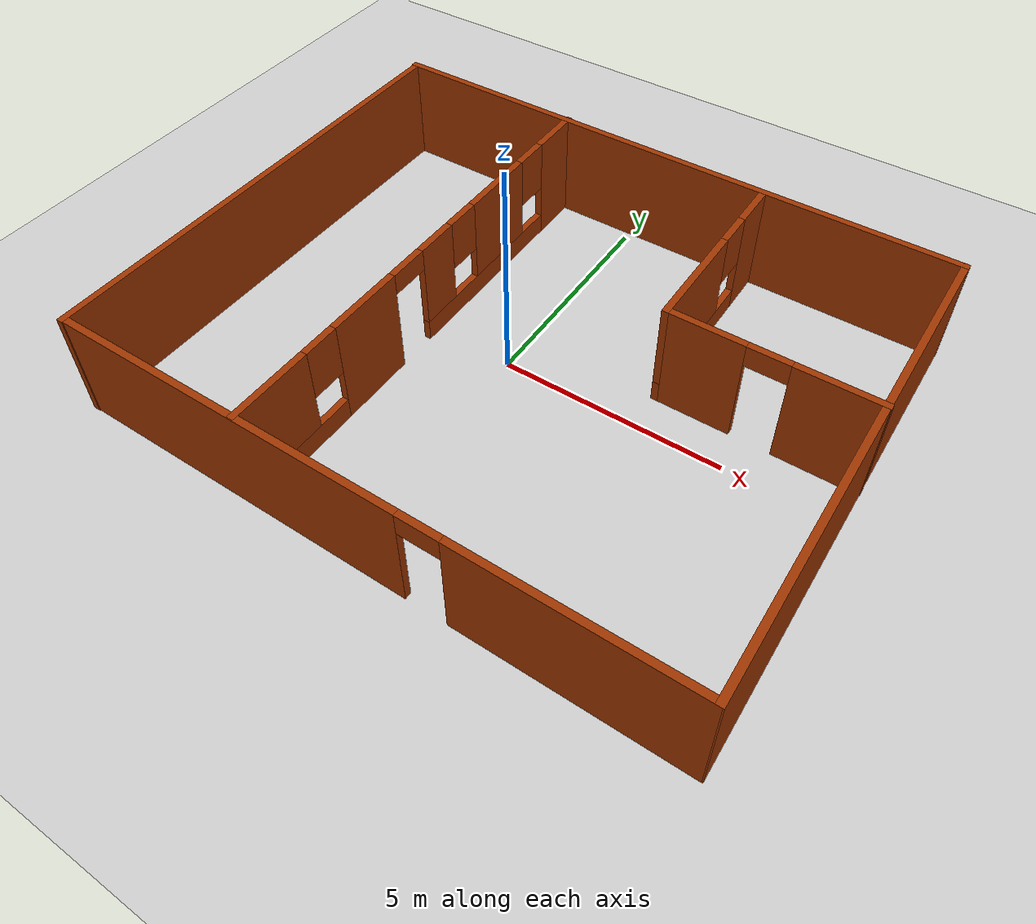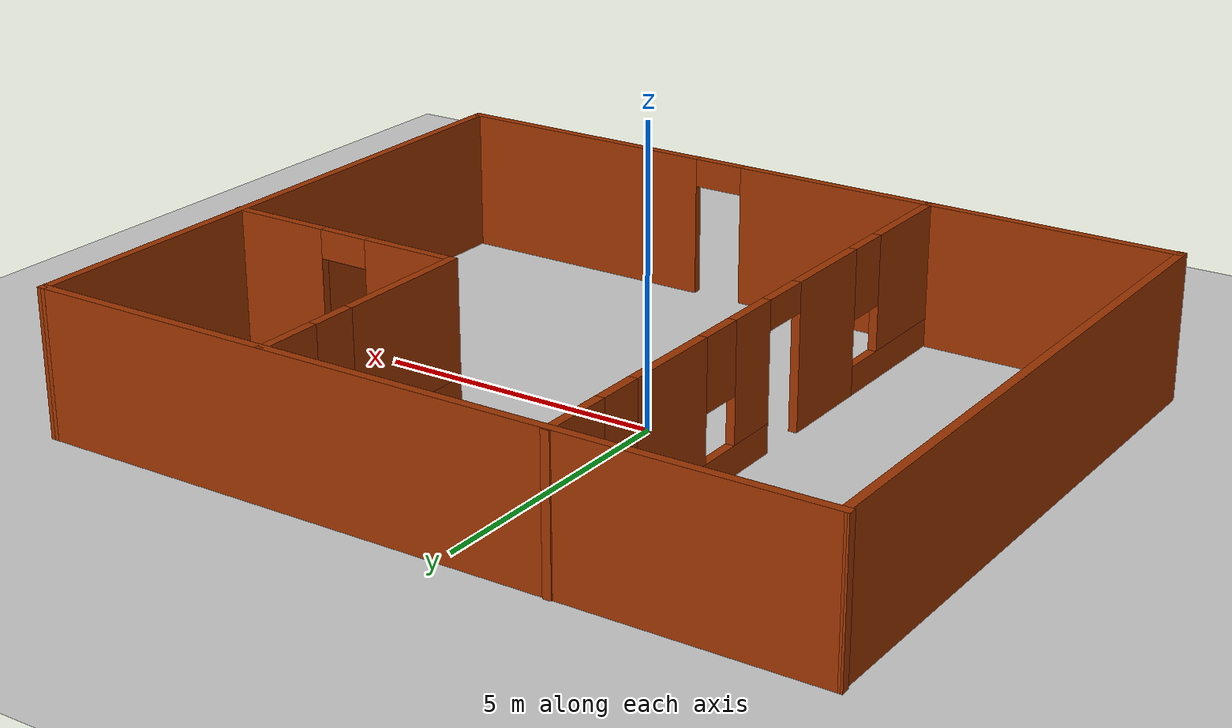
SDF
<sdf version="1.6">
 <world name="default">
  <light name="sun" type="directional">
   <pose>0 0 10 0 -0 0</pose>
   <diffuse>0.8 0.8 0.8 1</diffuse>
   <specular>0.1 0.1 0.1 1</specular>
   <attenuation>
    <range>1000</range>
    <constant>0.9</constant>
    <linear>0.01</linear>
    <quadratic>0.001</quadratic>
   </attenuation>
   <direction>-0.5 0.5 -1</direction>
  </light>
  <model name="ground_plane">
   <static>1</static>
   <link name="link">
    <collision name="collision">
     <geometry><plane><normal>0 0 1</normal><size>100 100</size></plane></geometry>
     <surface><friction><ode><mu>100</mu><mu2>50</mu2></ode></friction></surface>
    </collision>
    <visual name="visual">
     <cast_shadows>0</cast_shadows>
     <geometry><plane><normal>0 0 1</normal><size>100 100</size></plane></geometry>
     <material>
      <script><uri>file://media/materials/scripts/gazebo.material</uri><name>Gazebo/Grey</name></script>
     </material>
    </visual>
   </link>
  </model>
  <gravity>0 0 -9.8</gravity>
  <magnetic_field>6e-06 2.3e-05 -4.2e-05</magnetic_field>
  <atmosphere type="adiabatic"/>
  <physics name="default_physics" default="0" type="ode">
   <max_step_size>0.001</max_step_size>
   <real_time_factor>1</real_time_factor>
   <real_time_update_rate>1000</real_time_update_rate>
  </physics>
  <scene><ambient>0.4 0.4 0.4 1</ambient><background>0.7 0.7 0.7 1</background><shadows>1</shadows></scene>
  <spherical_coordinates>
   <surface_model>EARTH_WGS84</surface_model>
   <latitude_deg>0</latitude_deg>
   <longitude_deg>0</longitude_deg>
   <elevation>0</elevation>
   <heading_deg>0</heading_deg>
  </spherical_coordinates>
  <model name="ingrid_0">
   <pose>0.547957 -0.145633 0 0 -0 0</pose>
   <link name="Wall_0">
    <collision name="Wall_0_Collision">
     <geometry><box><size>11 0.15 2.5</size></box></geometry>
     <pose>0 0 1.25 0 -0 0</pose>
    </collision>
    <visual name="Wall_0_Visual">
     <pose>0 0 1.25 0 -0 0</pose>
     <geometry><box><size>11 0.15 2.5</size></box></geometry>
     <material>
      <script><uri>file://media/materials/scripts/gazebo.material</uri><name>Gazebo/Grey</name></script>
      <ambient>0.615686 0.203922 0 1</ambient>
     </material>
    </visual>
    <pose>-6.82034 -0.016189 0 0 -0 1.5708</pose>
   </link>
   <link name="Wall_1">
    <collision name="Wall_1_Collision">
     <geometry><box><size>13.8484 0.15 2.5</size></box></geometry>
     <pose>0 0 1.25 0 -0 0</pose>
    </collision>
    <visual name="Wall_1_Visual">
     <pose>0 0 1.25 0 -0 0</pose>
     <geometry><box><size>13.8484 0.15 2.5</size></box></geometry>
     <material>
      <script><uri>file://media/materials/scripts/gazebo.material</uri><name>Gazebo/Grey</name></script>
      <ambient>0.615686 0.203922 0 1</ambient>
     </material>
    </visual>
    <pose>-0.006322 5.41718 0 0 -0 0.001222</pose>
   </link>
   <link name="Wall_2">
    <collision name="Wall_2_Collision">
     <geometry><box><size>11 0.15 2.5</size></box></geometry>
     <pose>0 0 1.25 0 -0 0</pose>
    </collision>
    <visual name="Wall_2_Visual">
     <pose>0 0 1.25 0 -0 0</pose>
     <geometry><box><size>11 0.15 2.5</size></box></geometry>
     <material>
      <script><uri>file://media/materials/scripts/gazebo.material</uri><name>Gazebo/Grey</name></script>
      <ambient>0.615686 0.203922 0 1</ambient>
     </material>
    </visual>
    <pose>6.84287 0.00055 0 0 0 -1.5708</pose>
   </link>
   <link name="Wall_3">
    <pose>0.016272 -5.42445 0 0 -0 3.14159</pose>
    <visual name="Wall_3_Visual_0">
     <pose>-4.44831 0 1.25 0 -0 0</pose>
     <geometry><box><size>4.85337 0.15 2.5</size></box></geometry>
     <material>
      <script><uri>file://media/materials/scripts/gazebo.material</uri><name>Gazebo/Grey</name></script>
      <ambient>0.615686 0.203922 0 1</ambient>
     </material>
    </visual>
    <collision name="Wall_3_Collision_0">
     <geometry><box><size>4.85337 0.15 2.5</size></box></geometry>
     <pose>-4.44831 0 1.25 0 -0 0</pose>
    </collision>
    <visual name="Wall_3_Visual_1">
     <pose>2.87669 0 1.25 0 -0 0</pose>
     <geometry><box><size>7.99663 0.15 2.5</size></box></geometry>
     <material>
      <script><uri>file://media/materials/scripts/gazebo.material</uri><name>Gazebo/Grey</name></script>
      <ambient>0.615686 0.203922 0 1</ambient>
     </material>
    </visual>
    <collision name="Wall_3_Collision_1">
     <geometry><box><size>7.99663 0.15 2.5</size></box></geometry>
     <pose>2.87669 0 1.25 0 -0 0</pose>
    </collision>
    <visual name="Wall_3_Visual_2">
     <pose>-1.57163 0 2.25 0 -0 0</pose>
     <geometry><box><size>0.9 0.15 0.5</size></box></geometry>
     <material>
      <script><uri>file://media/materials/scripts/gazebo.material</uri><name>Gazebo/Grey</name></script>
      <ambient>0.615686 0.203922 0 1</ambient>
     </material>
    </visual>
    <collision name="Wall_3_Collision_2">
     <geometry><box><size>0.9 0.15 0.5</size></box></geometry>
     <pose>-1.57163 0 2.25 0 -0 0</pose>
    </collision>
   </link>
   <link name="Wall_5">
    <pose>-2.45001 0.016189 0 0 0 -1.5708</pose>
    <visual name="Wall_5_Visual_0">
     <pose>-4.85711 0 1.25 0 -0 0</pose>
     <geometry><box><size>1.28578 0.15 2.5</size></box></geometry>
     <material>
      <script><uri>file://media/materials/scripts/gazebo.material</uri><name>Gazebo/Grey</name></script>
      <ambient>0.615686 0.203922 0 1</ambient>
     </material>
    </visual>
    <collision name="Wall_5_Collision_0">
     <geometry><box><size>1.28578 0.15 2.5</size></box></geometry>
     <pose>-4.85711 0 1.25 0 -0 0</pose>
    </collision>
    <visual name="Wall_5_Visual_1">
     <pose>1.94492 0 1.25 0 -0 0</pose>
     <geometry><box><size>1.75323 0.15 2.5</size></box></geometry>
     <material>
      <script><uri>file://media/materials/scripts/gazebo.material</uri><name>Gazebo/Grey</name></script>
      <ambient>0.615686 0.203922 0 1</ambient>
     </material>
    </visual>
    <collision name="Wall_5_Collision_1">
     <geometry><box><size>1.75323 0.15 2.5</size></box></geometry>
     <pose>1.94492 0 1.25 0 -0 0</pose>
    </collision>
    <visual name="Wall_5_Visual_2">
     <pose>-2.02296 0 0.25 0 -0 0</pose>
     <geometry><box><size>4.38252 0.15 0.5</size></box></geometry>
     <material>
      <script><uri>file://media/materials/scripts/gazebo.material</uri><name>Gazebo/Grey</name></script>
      <ambient>0.615686 0.203922 0 1</ambient>
     </material>
    </visual>
    <collision name="Wall_5_Collision_2">
     <geometry><box><size>4.38252 0.15 0.5</size></box></geometry>
     <pose>-2.02296 0 0.25 0 -0 0</pose>
    </collision>
    <visual name="Wall_5_Visual_3">
     <pose>4.16076 0 0.25 0 -0 0</pose>
     <geometry><box><size>2.67847 0.15 0.5</size></box></geometry>
     <material>
      <script><uri>file://media/materials/scripts/gazebo.material</uri><name>Gazebo/Grey</name></script>
      <ambient>0.615686 0.203922 0 1</ambient>
     </material>
    </visual>
    <collision name="Wall_5_Collision_3">
     <geometry><box><size>2.67847 0.15 0.5</size></box></geometry>
     <pose>4.16076 0 0.25 0 -0 0</pose>
    </collision>
    <visual name="Wall_5_Visual_4">
     <pose>-2.51261 0 1.5 0 -0 0</pose>
     <geometry><box><size>1.80323 0.15 2</size></box></geometry>
     <material>
      <script><uri>file://media/materials/scripts/gazebo.material</uri><name>Gazebo/Grey</name></script>
      <ambient>0.615686 0.203922 0 1</ambient>
     </material>
    </visual>
    <collision name="Wall_5_Collision_4">
     <geometry><box><size>1.80323 0.15 2</size></box></geometry>
     <pose>-2.51261 0 1.5 0 -0 0</pose>
    </collision>
    <visual name="Wall_5_Visual_5">
     <pose>-0.321346 0 1.5 0 -0 0</pose>
     <geometry><box><size>0.979296 0.15 2</size></box></geometry>
     <material>
      <script><uri>file://media/materials/scripts/gazebo.material</uri><name>Gazebo/Grey</name></script>
      <ambient>0.615686 0.203922 0 1</ambient>
     </material>
    </visual>
    <collision name="Wall_5_Collision_5">
     <geometry><box><size>0.979296 0.15 2</size></box></geometry>
     <pose>-0.321346 0 1.5 0 -0 0</pose>
    </collision>
    <visual name="Wall_5_Visual_6">
     <pose>-0.321346 0 1.5 0 -0 0</pose>
     <geometry><box><size>0.979296 0.15 2</size></box></geometry>
     <material>
      <script><uri>file://media/materials/scripts/gazebo.material</uri><name>Gazebo/Grey</name></script>
      <ambient>0.615686 0.203922 0 1</ambient>
     </material>
    </visual>
    <collision name="Wall_5_Collision_6">
     <geometry><box><size>0.979296 0.15 2</size></box></geometry>
     <pose>-0.321346 0 1.5 0 -0 0</pose>
    </collision>
    <visual name="Wall_5_Visual_7">
     <pose>4.56076 0 1.5 0 -0 0</pose>
     <geometry><box><size>1.87847 0.15 2</size></box></geometry>
     <material>
      <script><uri>file://media/materials/scripts/gazebo.material</uri><name>Gazebo/Grey</name></script>
      <ambient>0.615686 0.203922 0 1</ambient>
     </material>
    </visual>
    <collision name="Wall_5_Collision_7">
     <geometry><box><size>1.87847 0.15 2</size></box></geometry>
     <pose>4.56076 0 1.5 0 -0 0</pose>
    </collision>
    <visual name="Wall_5_Visual_8">
     <pose>-3.81422 0 1.9 0 -0 0</pose>
     <geometry><box><size>0.8 0.15 1.2</size></box></geometry>
     <material>
      <script><uri>file://media/materials/scripts/gazebo.material</uri><name>Gazebo/Grey</name></script>
      <ambient>0.615686 0.203922 0 1</ambient>
     </material>
    </visual>
    <collision name="Wall_5_Collision_8">
     <geometry><box><size>0.8 0.15 1.2</size></box></geometry>
     <pose>-3.81422 0 1.9 0 -0 0</pose>
    </collision>
    <visual name="Wall_5_Visual_9">
     <pose>3.22153 0 1.9 0 -0 0</pose>
     <geometry><box><size>0.8 0.15 1.2</size></box></geometry>
     <material>
      <script><uri>file://media/materials/scripts/gazebo.material</uri><name>Gazebo/Grey</name></script>
      <ambient>0.615686 0.203922 0 1</ambient>
     </material>
    </visual>
    <collision name="Wall_5_Collision_9">
     <geometry><box><size>0.8 0.15 1.2</size></box></geometry>
     <pose>3.22153 0 1.9 0 -0 0</pose>
    </collision>
    <visual name="Wall_5_Visual_10">
     <pose>-1.21099 0 1.9 0 -0 0</pose>
     <geometry><box><size>0.8 0.15 1.2</size></box></geometry>
     <material>
      <script><uri>file://media/materials/scripts/gazebo.material</uri><name>Gazebo/Grey</name></script>
      <ambient>0.615686 0.203922 0 1</ambient>
     </material>
    </visual>
    <collision name="Wall_5_Collision_10">
     <geometry><box><size>0.8 0.15 1.2</size></box></geometry>
     <pose>-1.21099 0 1.9 0 -0 0</pose>
    </collision>
    <visual name="Wall_5_Visual_11">
     <pose>0.618302 0 2.25 0 -0 0</pose>
     <geometry><box><size>0.9 0.15 0.5</size></box></geometry>
     <material>
      <script><uri>file://media/materials/scripts/gazebo.material</uri><name>Gazebo/Grey</name></script>
      <ambient>0.615686 0.203922 0 1</ambient>
     </material>
    </visual>
    <collision name="Wall_5_Collision_11">
     <geometry><box><size>0.9 0.15 0.5</size></box></geometry>
     <pose>0.618302 0 2.25 0 -0 0</pose>
    </collision>
    <visual name="Wall_5_Visual_12">
     <pose>0.618302 0 2.25 0 -0 0</pose>
     <geometry><box><size>0.9 0.15 0.5</size></box></geometry>
     <material>
      <script><uri>file://media/materials/scripts/gazebo.material</uri><name>Gazebo/Grey</name></script>
      <ambient>0.615686 0.203922 0 1</ambient>
     </material>
    </visual>
    <collision name="Wall_5_Collision_12">
     <geometry><box><size>0.9 0.15 0.5</size></box></geometry>
     <pose>0.618302 0 2.25 0 -0 0</pose>
    </collision>
   </link>
   <link name="Wall_7">
    <pose>2.50561 3.2356 0 0 0 -1.5708</pose>
    <visual name="Wall_7_Visual_0">
     <pose>-1.67517 0 1.25 0 -0 0</pose>
     <geometry><box><size>1.14965 0.15 2.5</size></box></geometry>
     <material>
      <script><uri>file://media/materials/scripts/gazebo.material</uri><name>Gazebo/Grey</name></script>
      <ambient>0.615686 0.203922 0 1</ambient>
     </material>
    </visual>
    <collision name="Wall_7_Collision_0">
     <geometry><box><size>1.14965 0.15 2.5</size></box></geometry>
     <pose>-1.67517 0 1.25 0 -0 0</pose>
    </collision>
    <visual name="Wall_7_Visual_1">
     <pose>0.574826 0 0.25 0 -0 0</pose>
     <geometry><box><size>3.35035 0.15 0.5</size></box></geometry>
     <material>
      <script><uri>file://media/materials/scripts/gazebo.material</uri><name>Gazebo/Grey</name></script>
      <ambient>0.615686 0.203922 0 1</ambient>
     </material>
    </visual>
    <collision name="Wall_7_Collision_1">
     <geometry><box><size>3.35035 0.15 0.5</size></box></geometry>
     <pose>0.574826 0 0.25 0 -0 0</pose>
    </collision>
    <visual name="Wall_7_Visual_2">
     <pose>0.974826 0 1.5 0 -0 0</pose>
     <geometry><box><size>2.55035 0.15 2</size></box></geometry>
     <material>
      <script><uri>file://media/materials/scripts/gazebo.material</uri><name>Gazebo/Grey</name></script>
      <ambient>0.615686 0.203922 0 1</ambient>
     </material>
    </visual>
    <collision name="Wall_7_Collision_2">
     <geometry><box><size>2.55035 0.15 2</size></box></geometry>
     <pose>0.974826 0 1.5 0 -0 0</pose>
    </collision>
    <visual name="Wall_7_Visual_3">
     <pose>-0.700348 0 1.9 0 -0 0</pose>
     <geometry><box><size>0.8 0.15 1.2</size></box></geometry>
     <material>
      <script><uri>file://media/materials/scripts/gazebo.material</uri><name>Gazebo/Grey</name></script>
      <ambient>0.615686 0.203922 0 1</ambient>
     </material>
    </visual>
    <collision name="Wall_7_Collision_3">
     <geometry><box><size>0.8 0.15 1.2</size></box></geometry>
     <pose>-0.700348 0 1.9 0 -0 0</pose>
    </collision>
   </link>
   <link name="Wall_8">
    <pose>4.68061 1.0606 0 0 -0 0</pose>
    <visual name="Wall_8_Visual_0">
     <pose>-1.37354 0 1.25 0 -0 0</pose>
     <geometry><box><size>1.75292 0.15 2.5</size></box></geometry>
     <material>
      <script><uri>file://media/materials/scripts/gazebo.material</uri><name>Gazebo/Grey</name></script>
      <ambient>0.615686 0.203922 0 1</ambient>
     </material>
    </visual>
    <collision name="Wall_8_Collision_0">
     <geometry><box><size>1.75292 0.15 2.5</size></box></geometry>
     <pose>-1.37354 0 1.25 0 -0 0</pose>
    </collision>
    <visual name="Wall_8_Visual_1">
     <pose>1.32646 0 1.25 0 -0 0</pose>
     <geometry><box><size>1.84708 0.15 2.5</size></box></geometry>
     <material>
      <script><uri>file://media/materials/scripts/gazebo.material</uri><name>Gazebo/Grey</name></script>
      <ambient>0.615686 0.203922 0 1</ambient>
     </material>
    </visual>
    <collision name="Wall_8_Collision_1">
     <geometry><box><size>1.84708 0.15 2.5</size></box></geometry>
     <pose>1.32646 0 1.25 0 -0 0</pose>
    </collision>
    <visual name="Wall_8_Visual_2">
     <pose>-0.047081 0 2.25 0 -0 0</pose>
     <geometry><box><size>0.9 0.15 0.5</size></box></geometry>
     <material>
      <script><uri>file://media/materials/scripts/gazebo.material</uri><name>Gazebo/Grey</name></script>
      <ambient>0.615686 0.203922 0 1</ambient>
     </material>
    </visual>
    <collision name="Wall_8_Collision_2">
     <geometry><box><size>0.9 0.15 0.5</size></box></geometry>
     <pose>-0.047081 0 2.25 0 -0 0</pose>
    </collision>
   </link>
   <static>1</static>
  </model>
  <plugin filename="libcollision_map_creator.so" name="collision_map_creator"/>
 </world>
</sdf>
